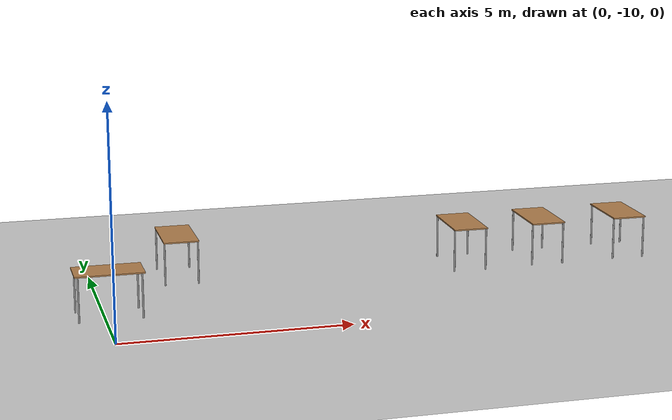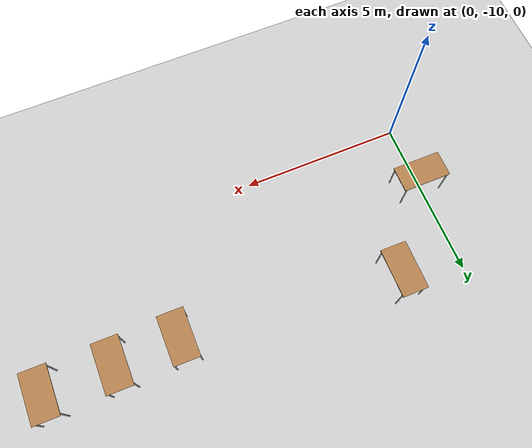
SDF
<sdf version="1.6">
 <world name="default">
  <model name="ground_plane">
   <static>1</static>
   <link name="link">
    <collision name="collision">
     <geometry><plane><normal>0 0 1</normal><size>100 100</size></plane></geometry>
     <surface>
      <contact><collide_bitmask>65535</collide_bitmask></contact>
      <friction><ode><mu>100</mu><mu2>50</mu2></ode></friction>
     </surface>
    </collision>
    <visual name="visual">
     <cast_shadows>0</cast_shadows>
     <geometry><plane><normal>0 0 1</normal><size>100 100</size></plane></geometry>
     <material>
      <script><uri>file://media/materials/scripts/gazebo.material</uri><name>Gazebo/Grey</name></script>
     </material>
    </visual>
   </link>
  </model>
  <model name="table_clone_clone">
   <static>1</static>
   <link name="link">
    <collision name="surface">
     <pose>0 0 1 0 -0 0</pose>
     <geometry><box><size>1.5 0.8 0.03</size></box></geometry>
     <surface><friction><ode><mu>0.6</mu><mu2>0.6</mu2></ode></friction></surface>
    </collision>
    <visual name="visual1">
     <pose>0 0 1 0 -0 0</pose>
     <geometry><box><size>1.5 0.8 0.03</size></box></geometry>
     <material>
      <script><uri>file://media/materials/scripts/gazebo.material</uri><name>Gazebo/Wood</name></script>
     </material>
    </visual>
    <collision name="front_left_leg">
     <pose>0.68 0.38 0.5 0 -0 0</pose>
     <geometry><cylinder><radius>0.02</radius><length>1</length></cylinder></geometry>
    </collision>
    <visual name="front_left_leg">
     <pose>0.68 0.38 0.5 0 -0 0</pose>
     <geometry><cylinder><radius>0.02</radius><length>1</length></cylinder></geometry>
     <material>
      <script><uri>file://media/materials/scripts/gazebo.material</uri><name>Gazebo/Grey</name></script>
     </material>
    </visual>
    <collision name="front_right_leg">
     <pose>0.68 -0.38 0.5 0 -0 0</pose>
     <geometry><cylinder><radius>0.02</radius><length>1</length></cylinder></geometry>
    </collision>
    <visual name="front_right_leg">
     <pose>0.68 -0.38 0.5 0 -0 0</pose>
     <geometry><cylinder><radius>0.02</radius><length>1</length></cylinder></geometry>
     <material>
      <script><uri>file://media/materials/scripts/gazebo.material</uri><name>Gazebo/Grey</name></script>
     </material>
    </visual>
    <collision name="back_right_leg">
     <pose>-0.68 -0.38 0.5 0 -0 0</pose>
     <geometry><cylinder><radius>0.02</radius><length>1</length></cylinder></geometry>
    </collision>
    <visual name="back_right_leg">
     <pose>-0.68 -0.38 0.5 0 -0 0</pose>
     <geometry><cylinder><radius>0.02</radius><length>1</length></cylinder></geometry>
     <material>
      <script><uri>file://media/materials/scripts/gazebo.material</uri><name>Gazebo/Grey</name></script>
     </material>
    </visual>
    <collision name="back_left_leg">
     <pose>-0.68 0.38 0.5 0 -0 0</pose>
     <geometry><cylinder><radius>0.02</radius><length>1</length></cylinder></geometry>
    </collision>
    <visual name="back_left_leg">
     <pose>-0.68 0.38 0.5 0 -0 0</pose>
     <geometry><cylinder><radius>0.02</radius><length>1</length></cylinder></geometry>
     <material>
      <script><uri>file://media/materials/scripts/gazebo.material</uri><name>Gazebo/Grey</name></script>
     </material>
    </visual>
   </link>
   <pose>1.99736 -5.46267 0 0 -0 1.56371</pose>
  </model>
  <model name="table_clone_clone_8">
   <static>1</static>
   <link name="link">
    <collision name="surface">
     <pose>0 0 1 0 -0 0</pose>
     <geometry><box><size>1.5 0.8 0.03</size></box></geometry>
     <surface><friction><ode><mu>0.6</mu><mu2>0.6</mu2></ode></friction></surface>
    </collision>
    <visual name="visual1">
     <pose>0 0 1 0 -0 0</pose>
     <geometry><box><size>1.5 0.8 0.03</size></box></geometry>
     <material>
      <script><uri>file://media/materials/scripts/gazebo.material</uri><name>Gazebo/Wood</name></script>
     </material>
    </visual>
    <collision name="front_left_leg">
     <pose>0.68 0.38 0.5 0 -0 0</pose>
     <geometry><cylinder><radius>0.02</radius><length>1</length></cylinder></geometry>
    </collision>
    <visual name="front_left_leg">
     <pose>0.68 0.38 0.5 0 -0 0</pose>
     <geometry><cylinder><radius>0.02</radius><length>1</length></cylinder></geometry>
     <material>
      <script><uri>file://media/materials/scripts/gazebo.material</uri><name>Gazebo/Grey</name></script>
     </material>
    </visual>
    <collision name="front_right_leg">
     <pose>0.68 -0.38 0.5 0 -0 0</pose>
     <geometry><cylinder><radius>0.02</radius><length>1</length></cylinder></geometry>
    </collision>
    <visual name="front_right_leg">
     <pose>0.68 -0.38 0.5 0 -0 0</pose>
     <geometry><cylinder><radius>0.02</radius><length>1</length></cylinder></geometry>
     <material>
      <script><uri>file://media/materials/scripts/gazebo.material</uri><name>Gazebo/Grey</name></script>
     </material>
    </visual>
    <collision name="back_right_leg">
     <pose>-0.68 -0.38 0.5 0 -0 0</pose>
     <geometry><cylinder><radius>0.02</radius><length>1</length></cylinder></geometry>
    </collision>
    <visual name="back_right_leg">
     <pose>-0.68 -0.38 0.5 0 -0 0</pose>
     <geometry><cylinder><radius>0.02</radius><length>1</length></cylinder></geometry>
     <material>
      <script><uri>file://media/materials/scripts/gazebo.material</uri><name>Gazebo/Grey</name></script>
     </material>
    </visual>
    <collision name="back_left_leg">
     <pose>-0.68 0.38 0.5 0 -0 0</pose>
     <geometry><cylinder><radius>0.02</radius><length>1</length></cylinder></geometry>
    </collision>
    <visual name="back_left_leg">
     <pose>-0.68 0.38 0.5 0 -0 0</pose>
     <geometry><cylinder><radius>0.02</radius><length>1</length></cylinder></geometry>
     <material>
      <script><uri>file://media/materials/scripts/gazebo.material</uri><name>Gazebo/Grey</name></script>
     </material>
    </visual>
   </link>
   <pose>8.66138 -6.09088 0 0 -0 1.56371</pose>
  </model>
  <model name="table_clone_clone_9">
   <static>1</static>
   <link name="link">
    <collision name="surface">
     <pose>0 0 1 0 -0 0</pose>
     <geometry><box><size>1.5 0.8 0.03</size></box></geometry>
     <surface><friction><ode><mu>0.6</mu><mu2>0.6</mu2></ode></friction></surface>
    </collision>
    <visual name="visual1">
     <pose>0 0 1 0 -0 0</pose>
     <geometry><box><size>1.5 0.8 0.03</size></box></geometry>
     <material>
      <script><uri>file://media/materials/scripts/gazebo.material</uri><name>Gazebo/Wood</name></script>
     </material>
    </visual>
    <collision name="front_left_leg">
     <pose>0.68 0.38 0.5 0 -0 0</pose>
     <geometry><cylinder><radius>0.02</radius><length>1</length></cylinder></geometry>
    </collision>
    <visual name="front_left_leg">
     <pose>0.68 0.38 0.5 0 -0 0</pose>
     <geometry><cylinder><radius>0.02</radius><length>1</length></cylinder></geometry>
     <material>
      <script><uri>file://media/materials/scripts/gazebo.material</uri><name>Gazebo/Grey</name></script>
     </material>
    </visual>
    <collision name="front_right_leg">
     <pose>0.68 -0.38 0.5 0 -0 0</pose>
     <geometry><cylinder><radius>0.02</radius><length>1</length></cylinder></geometry>
    </collision>
    <visual name="front_right_leg">
     <pose>0.68 -0.38 0.5 0 -0 0</pose>
     <geometry><cylinder><radius>0.02</radius><length>1</length></cylinder></geometry>
     <material>
      <script><uri>file://media/materials/scripts/gazebo.material</uri><name>Gazebo/Grey</name></script>
     </material>
    </visual>
    <collision name="back_right_leg">
     <pose>-0.68 -0.38 0.5 0 -0 0</pose>
     <geometry><cylinder><radius>0.02</radius><length>1</length></cylinder></geometry>
    </collision>
    <visual name="back_right_leg">
     <pose>-0.68 -0.38 0.5 0 -0 0</pose>
     <geometry><cylinder><radius>0.02</radius><length>1</length></cylinder></geometry>
     <material>
      <script><uri>file://media/materials/scripts/gazebo.material</uri><name>Gazebo/Grey</name></script>
     </material>
    </visual>
    <collision name="back_left_leg">
     <pose>-0.68 0.38 0.5 0 -0 0</pose>
     <geometry><cylinder><radius>0.02</radius><length>1</length></cylinder></geometry>
    </collision>
    <visual name="back_left_leg">
     <pose>-0.68 0.38 0.5 0 -0 0</pose>
     <geometry><cylinder><radius>0.02</radius><length>1</length></cylinder></geometry>
     <material>
      <script><uri>file://media/materials/scripts/gazebo.material</uri><name>Gazebo/Grey</name></script>
     </material>
    </visual>
   </link>
   <pose>10.5943 -6.05021 0 0 -0 1.56371</pose>
  </model>
  <model name="table_clone_clone_10">
   <static>1</static>
   <link name="link">
    <collision name="surface">
     <pose>0 0 1 0 -0 0</pose>
     <geometry><box><size>1.5 0.8 0.03</size></box></geometry>
     <surface><friction><ode><mu>0.6</mu><mu2>0.6</mu2></ode></friction></surface>
    </collision>
    <visual name="visual1">
     <pose>0 0 1 0 -0 0</pose>
     <geometry><box><size>1.5 0.8 0.03</size></box></geometry>
     <material>
      <script><uri>file://media/materials/scripts/gazebo.material</uri><name>Gazebo/Wood</name></script>
     </material>
    </visual>
    <collision name="front_left_leg">
     <pose>0.68 0.38 0.5 0 -0 0</pose>
     <geometry><cylinder><radius>0.02</radius><length>1</length></cylinder></geometry>
    </collision>
    <visual name="front_left_leg">
     <pose>0.68 0.38 0.5 0 -0 0</pose>
     <geometry><cylinder><radius>0.02</radius><length>1</length></cylinder></geometry>
     <material>
      <script><uri>file://media/materials/scripts/gazebo.material</uri><name>Gazebo/Grey</name></script>
     </material>
    </visual>
    <collision name="front_right_leg">
     <pose>0.68 -0.38 0.5 0 -0 0</pose>
     <geometry><cylinder><radius>0.02</radius><length>1</length></cylinder></geometry>
    </collision>
    <visual name="front_right_leg">
     <pose>0.68 -0.38 0.5 0 -0 0</pose>
     <geometry><cylinder><radius>0.02</radius><length>1</length></cylinder></geometry>
     <material>
      <script><uri>file://media/materials/scripts/gazebo.material</uri><name>Gazebo/Grey</name></script>
     </material>
    </visual>
    <collision name="back_right_leg">
     <pose>-0.68 -0.38 0.5 0 -0 0</pose>
     <geometry><cylinder><radius>0.02</radius><length>1</length></cylinder></geometry>
    </collision>
    <visual name="back_right_leg">
     <pose>-0.68 -0.38 0.5 0 -0 0</pose>
     <geometry><cylinder><radius>0.02</radius><length>1</length></cylinder></geometry>
     <material>
      <script><uri>file://media/materials/scripts/gazebo.material</uri><name>Gazebo/Grey</name></script>
     </material>
    </visual>
    <collision name="back_left_leg">
     <pose>-0.68 0.38 0.5 0 -0 0</pose>
     <geometry><cylinder><radius>0.02</radius><length>1</length></cylinder></geometry>
    </collision>
    <visual name="back_left_leg">
     <pose>-0.68 0.38 0.5 0 -0 0</pose>
     <geometry><cylinder><radius>0.02</radius><length>1</length></cylinder></geometry>
     <material>
      <script><uri>file://media/materials/scripts/gazebo.material</uri><name>Gazebo/Grey</name></script>
     </material>
    </visual>
   </link>
   <pose>12.6516 -6.0317 0 0 -0 1.56371</pose>
  </model>
  <model name="table_clone_0">
   <static>1</static>
   <link name="link">
    <collision name="surface">
     <pose>0 0 1 0 -0 0</pose>
     <geometry><box><size>1.5 0.8 0.03</size></box></geometry>
     <surface><friction><ode><mu>0.6</mu><mu2>0.6</mu2></ode></friction></surface>
    </collision>
    <visual name="visual1">
     <pose>0 0 1 0 -0 0</pose>
     <geometry><box><size>1.5 0.8 0.03</size></box></geometry>
     <material>
      <script><uri>file://media/materials/scripts/gazebo.material</uri><name>Gazebo/Wood</name></script>
     </material>
    </visual>
    <collision name="front_left_leg">
     <pose>0.68 0.38 0.5 0 -0 0</pose>
     <geometry><cylinder><radius>0.02</radius><length>1</length></cylinder></geometry>
    </collision>
    <visual name="front_left_leg">
     <pose>0.68 0.38 0.5 0 -0 0</pose>
     <geometry><cylinder><radius>0.02</radius><length>1</length></cylinder></geometry>
     <material>
      <script><uri>file://media/materials/scripts/gazebo.material</uri><name>Gazebo/Grey</name></script>
     </material>
    </visual>
    <collision name="front_right_leg">
     <pose>0.68 -0.38 0.5 0 -0 0</pose>
     <geometry><cylinder><radius>0.02</radius><length>1</length></cylinder></geometry>
    </collision>
    <visual name="front_right_leg">
     <pose>0.68 -0.38 0.5 0 -0 0</pose>
     <geometry><cylinder><radius>0.02</radius><length>1</length></cylinder></geometry>
     <material>
      <script><uri>file://media/materials/scripts/gazebo.material</uri><name>Gazebo/Grey</name></script>
     </material>
    </visual>
    <collision name="back_right_leg">
     <pose>-0.68 -0.38 0.5 0 -0 0</pose>
     <geometry><cylinder><radius>0.02</radius><length>1</length></cylinder></geometry>
    </collision>
    <visual name="back_right_leg">
     <pose>-0.68 -0.38 0.5 0 -0 0</pose>
     <geometry><cylinder><radius>0.02</radius><length>1</length></cylinder></geometry>
     <material>
      <script><uri>file://media/materials/scripts/gazebo.material</uri><name>Gazebo/Grey</name></script>
     </material>
    </visual>
    <collision name="back_left_leg">
     <pose>-0.68 0.38 0.5 0 -0 0</pose>
     <geometry><cylinder><radius>0.02</radius><length>1</length></cylinder></geometry>
    </collision>
    <visual name="back_left_leg">
     <pose>-0.68 0.38 0.5 0 -0 0</pose>
     <geometry><cylinder><radius>0.02</radius><length>1</length></cylinder></geometry>
     <material>
      <script><uri>file://media/materials/scripts/gazebo.material</uri><name>Gazebo/Grey</name></script>
     </material>
    </visual>
   </link>
   <pose>0.114585 -8.02915 0 0 -0 0</pose>
  </model>
 </world>
</sdf>
